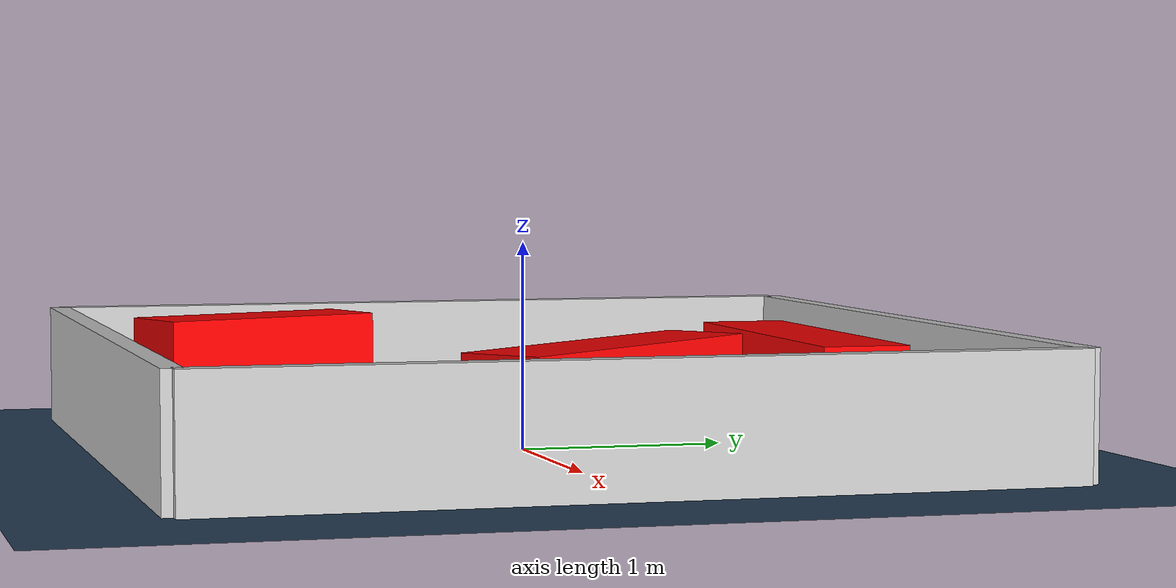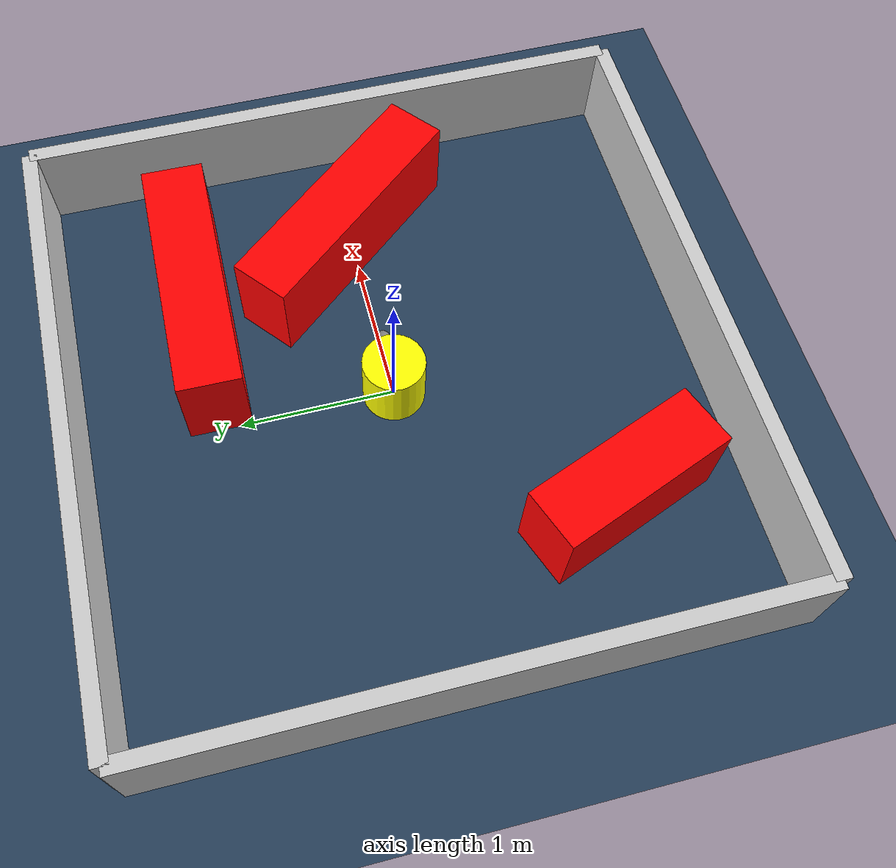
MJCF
<?xml version="1.0" ?>
<mujoco model="generated_environment">
  <option timestep="0.01" integrator="RK4" cone="elliptic"/>
  <default>
    <geom density="1"/>
  </default>
  <asset>
    <texture builtin="gradient" height="3072" rgb1="0.3 0.5 0.7" rgb2="0 0 0" type="skybox" width="512"/>
    <texture builtin="checker" height="300" mark="edge" markrgb="0.8 0.8 0.8" name="groundplane" rgb1="0.2 0.3 0.4" rgb2="0.1 0.2 0.3" type="2d" width="300"/>
    <material name="groundplane" reflectance="0.2" texrepeat="5 5" texture="groundplane" texuniform="true"/>
    <material name="robot" rgba="0.0 1.0 0.0 1"/>
  </asset>
  <worldbody>
    <light dir="0 0 -1" directional="true" pos="0 0 1.5"/>
    <geom condim="4" friction="1.0 0.005 0.001" material="groundplane" name="floor" size="0 0 0.05" type="plane"/>
    <body name="walls">
      <geom name="wall_1" condim="4" pos="-2.0 0.0 0.3" rgba="0.800000011920929 0.800000011920929 0.800000011920929 1.0" size="0.05 2.0 0.3" type="box"/>
      <geom name="wall_2" condim="4" pos="2.0 0.0 0.3" rgba="0.800000011920929 0.800000011920929 0.800000011920929 1.0" size="0.05 2.0 0.3" type="box"/>
      <geom name="wall_3" condim="4" pos="0.0 -2.0 0.3" rgba="0.800000011920929 0.800000011920929 0.800000011920929 1.0" size="2.0 0.05 0.3" type="box"/>
      <geom name="wall_4" condim="4" pos="0.0 2.0 0.3" rgba="0.800000011920929 0.800000011920929 0.800000011920929 1.0" size="2.0 0.05 0.3" type="box"/>
    </body>
    <body name="robot">
      <joint name="joint_x" type="slide" pos="0 0 0" axis="1 0 0"/>
      <joint name="joint_y" type="slide" pos="0 0 0" axis="0 1 0"/>
      <geom name="robot" type="sphere" pos="0.3 0.0 0.2" size="0.05" mass="5." friction="1.0 0.005 0.0001" condim="4" rgba="0.5 0.5 0.5 1.0"/>
      <site name="sensor_ball"/>
    </body>
    <body name="obstacle_movable_1">
      <geom name="obstacle_movable_1" condim="4" pos="0.0 0.0 0.2" euler="0 0 0.0" friction="1.0 0.005 0.001" rgba="1.0 1.0 0.0 1.0" size="0.2 0.2 0.0" type="cylinder" mass="0.1"/>
      <joint type="free"/>
    </body>
    <body name="obstacle_2_static">
      <geom name="obstacle_2_static" condim="4" pos="-1.0865531104376838 -1.1161579737980243 0.3" euler="0 0 290.8333139205672" friction="1.0 0.005 0.001" rgba="1 0 0 1" size="0.5847891380448209 0.2 0.3" type="box"/>
    </body>
    <body name="obstacle_3_static">
      <geom name="obstacle_3_static" condim="4" pos="0.8320307665625635 1.1105174893687202 0.3" euler="0 0 179.25423683921696" friction="1.0 0.005 0.001" rgba="1 0 0 1" size="0.831743974111937 0.2 0.3" type="box"/>
    </body>
    <body name="obstacle_4_static">
      <geom name="obstacle_4_static" condim="4" pos="1.1777429300086695 0.06487790687182438 0.3" euler="0 0 129.70891619088374" friction="1.0 0.005 0.001" rgba="1 0 0 1" size="0.8344241300566018 0.2 0.3" type="box"/>
    </body>
  </worldbody>
  <actuator>
    <motor name="actuator_x" joint="joint_x" gear="1" ctrlrange="-1 1"/>
    <motor name="actuator_y" joint="joint_y" gear="1" ctrlrange="-1 1"/>
  </actuator>
</mujoco>
